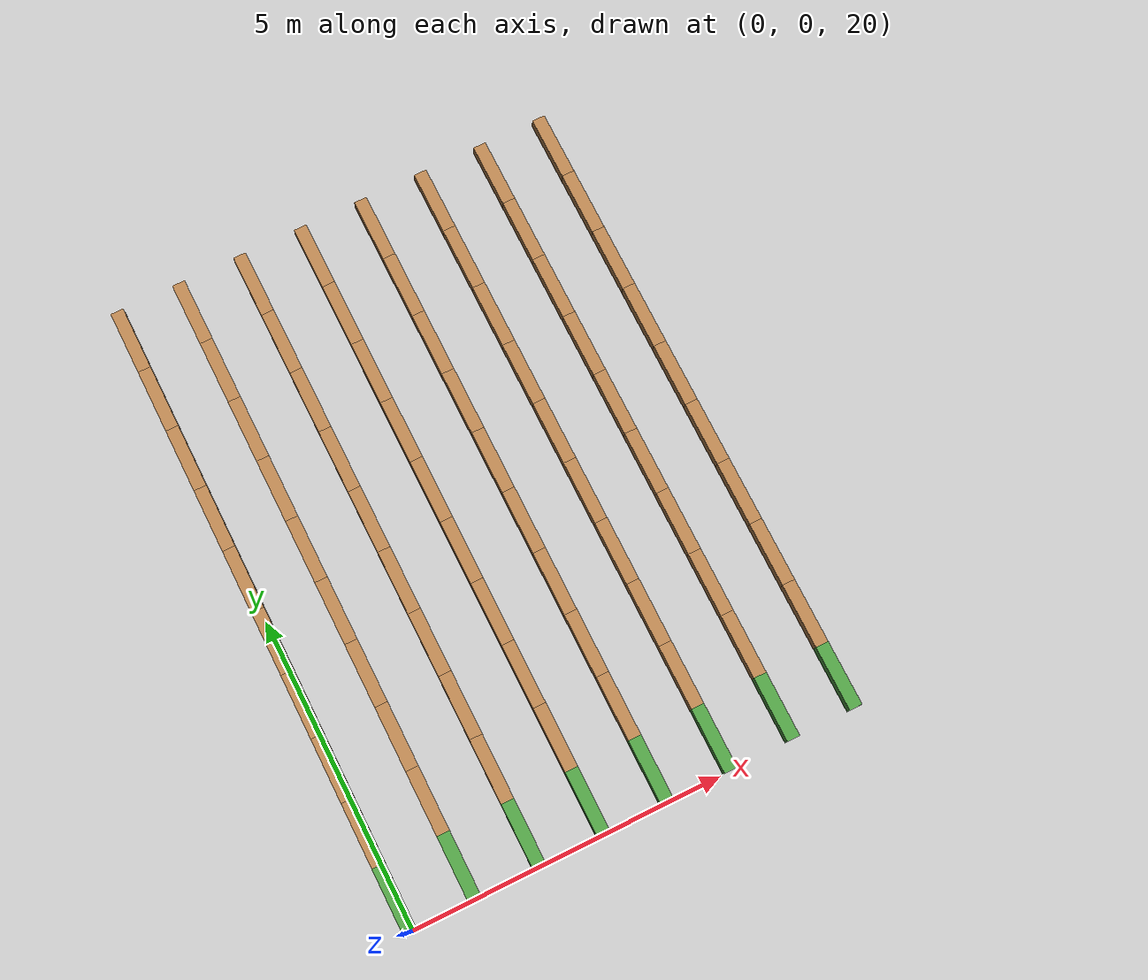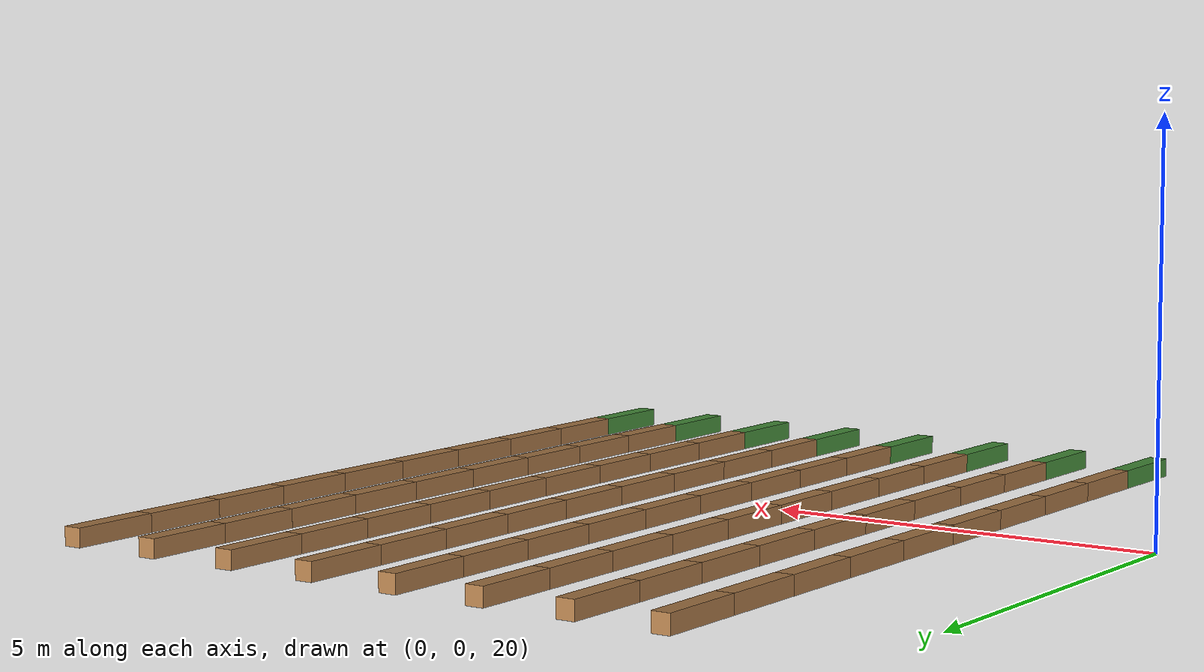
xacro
<?xml version="1.0"?>
<robot name="continuous_pendulum"
       xmlns:xi="http://www.w3.org/2001/XInclude"
       xmlns:gazebo="http://playerstage.sourceforge.net/gazebo/xmlschema/#gz"
       xmlns:model="http://playerstage.sourceforge.net/gazebo/xmlschema/#model"
       xmlns:sensor="http://playerstage.sourceforge.net/gazebo/xmlschema/#sensor"
       xmlns:body="http://playerstage.sourceforge.net/gazebo/xmlschema/#body"
       xmlns:geom="http://playerstage.sourceforge.net/gazebo/xmlschema/#geom"
       xmlns:joint="http://playerstage.sourceforge.net/gazebo/xmlschema/#joint"
       xmlns:interface="http://playerstage.sourceforge.net/gazebo/xmlschema/#interface"
       xmlns:rendering="http://playerstage.sourceforge.net/gazebo/xmlschema/#rendering"
       xmlns:renderable="http://playerstage.sourceforge.net/gazebo/xmlschema/#renderable"
       xmlns:controller="http://playerstage.sourceforge.net/gazebo/xmlschema/#controller"
       xmlns:xacro="http://ros.org/wiki/xacro"
       xmlns:physics="http://playerstage.sourceforge.net/gazebo/xmlschema/#physics">

  <!--
     A pendulum constructed from single continuous link and a mass with some moment of inertia
  -->
  <xacro:macro name="one_link" params="link_name parent *axis *origin material">
    <joint name="${link_name}_joint" type="continuous" >
      <insert_block name="origin"/>
      <insert_block name="axis"/>
      <parent link="${parent}" />
      <child link="${link_name}" />
      <dynamics damping="0.0" />
    </joint>
    <link name="${link_name}">
      <inertial >
        <mass value="1.0" />
        <origin xyz="0 1 0" />
        <inertia  ixx="0.0" ixy="0.0"  ixz="0.0"  iyy="0.0"  iyz="0.0"  izz="0.0" />
      </inertial>
      <visual >
        <origin xyz="0 0.5 0" rpy="0 0 0" />
        <geometry>
          <box size="0.2 1.0 0.2" />
        </geometry>
      </visual>
      <collision >
        <origin xyz="0 0.5 0" rpy="0 0 0" />
        <geometry>
          <box size="0.2 1.0 0.2" />
        </geometry>
      </collision>
    </link>
    <gazebo reference="${link_name}">
      <material>${material}</material>
      <turnGravityOff>false</turnGravityOff>
      <transmission type="SimpleTransmission" name="${link_name}_trans">
        <actuator name="${link_name}_motor" />
        <joint name="${link_name}_joint" />
        <mechanicalReduction>1</mechanicalReduction>
        <motorTorqueConstant>1</motorTorqueConstant>
      </transmission>
    </gazebo>
  </xacro:macro>

  <link name="world"/>
  <xacro:one_link link_name="link1_1" parent="world" material="Gazebo/GrassFloor">
    <origin xyz="0 0 21" rpy="0 0 0"/>
    <axis xyz="1 0 0" />
  </xacro:one_link>
  <xacro:one_link link_name="link2_1" parent="link1_1" material="Gazebo/LightWood">
    <origin xyz="0 1 0" rpy="0 0 0"/>
    <axis xyz="1 0 0" />
  </xacro:one_link>
  <xacro:one_link link_name="link3_1" parent="link2_1" material="Gazebo/LightWood">
    <origin xyz="0 1 0" rpy="0 0 0"/>
    <axis xyz="1 0 0" />
  </xacro:one_link>
  <xacro:one_link link_name="link4_1" parent="link3_1" material="Gazebo/LightWood">
    <origin xyz="0 1 0" rpy="0 0 0"/>
    <axis xyz="1 0 0" />
  </xacro:one_link>
  <xacro:one_link link_name="link5_1" parent="link4_1" material="Gazebo/LightWood">
    <origin xyz="0 1 0" rpy="0 0 0"/>
    <axis xyz="1 0 0" />
  </xacro:one_link>
  <xacro:one_link link_name="link6_1" parent="link5_1" material="Gazebo/LightWood">
    <origin xyz="0 1 0" rpy="0 0 0"/>
    <axis xyz="1 0 0" />
  </xacro:one_link>
  <xacro:one_link link_name="link7_1" parent="link6_1" material="Gazebo/LightWood">
    <origin xyz="0 1 0" rpy="0 0 0"/>
    <axis xyz="1 0 0" />
  </xacro:one_link>
  <xacro:one_link link_name="link8_1" parent="link7_1" material="Gazebo/LightWood">
    <origin xyz="0 1 0" rpy="0 0 0"/>
    <axis xyz="1 0 0" />
  </xacro:one_link>
  <xacro:one_link link_name="link9_1" parent="link8_1" material="Gazebo/LightWood">
    <origin xyz="0 1 0" rpy="0 0 0"/>
    <axis xyz="1 0 0" />
  </xacro:one_link>
  <xacro:one_link link_name="link10_1" parent="link9_1" material="Gazebo/LightWood">
    <origin xyz="0 1 0" rpy="0 0 0"/>
    <axis xyz="1 0 0" />
  </xacro:one_link>

  <xacro:one_link link_name="link1_2" parent="world" material="Gazebo/GrassFloor">
    <origin xyz="1 0 21" rpy="0 0 0"/>
    <axis xyz="1 0 0" />
  </xacro:one_link>
  <xacro:one_link link_name="link2_2" parent="link1_2" material="Gazebo/LightWood">
    <origin xyz="0 1 0" rpy="0 0 0"/>
    <axis xyz="1 0 0" />
  </xacro:one_link>
  <xacro:one_link link_name="link3_2" parent="link2_2" material="Gazebo/LightWood">
    <origin xyz="0 1 0" rpy="0 0 0"/>
    <axis xyz="1 0 0" />
  </xacro:one_link>
  <xacro:one_link link_name="link4_2" parent="link3_2" material="Gazebo/LightWood">
    <origin xyz="0 1 0" rpy="0 0 0"/>
    <axis xyz="1 0 0" />
  </xacro:one_link>
  <xacro:one_link link_name="link5_2" parent="link4_2" material="Gazebo/LightWood">
    <origin xyz="0 1 0" rpy="0 0 0"/>
    <axis xyz="1 0 0" />
  </xacro:one_link>
  <xacro:one_link link_name="link6_2" parent="link5_2" material="Gazebo/LightWood">
    <origin xyz="0 1 0" rpy="0 0 0"/>
    <axis xyz="1 0 0" />
  </xacro:one_link>
  <xacro:one_link link_name="link7_2" parent="link6_2" material="Gazebo/LightWood">
    <origin xyz="0 1 0" rpy="0 0 0"/>
    <axis xyz="1 0 0" />
  </xacro:one_link>
  <xacro:one_link link_name="link8_2" parent="link7_2" material="Gazebo/LightWood">
    <origin xyz="0 1 0" rpy="0 0 0"/>
    <axis xyz="1 0 0" />
  </xacro:one_link>
  <xacro:one_link link_name="link9_2" parent="link8_2" material="Gazebo/LightWood">
    <origin xyz="0 1 0" rpy="0 0 0"/>
    <axis xyz="1 0 0" />
  </xacro:one_link>
  <xacro:one_link link_name="link10_2" parent="link9_2" material="Gazebo/LightWood">
    <origin xyz="0 1 0" rpy="0 0 0"/>
    <axis xyz="1 0 0" />
  </xacro:one_link>

  <xacro:one_link link_name="link1_3" parent="world" material="Gazebo/GrassFloor">
    <origin xyz="2 0 21" rpy="0 0 0"/>
    <axis xyz="1 0 0" />
  </xacro:one_link>
  <xacro:one_link link_name="link2_3" parent="link1_3" material="Gazebo/LightWood">
    <origin xyz="0 1 0" rpy="0 0 0"/>
    <axis xyz="1 0 0" />
  </xacro:one_link>
  <xacro:one_link link_name="link3_3" parent="link2_3" material="Gazebo/LightWood">
    <origin xyz="0 1 0" rpy="0 0 0"/>
    <axis xyz="1 0 0" />
  </xacro:one_link>
  <xacro:one_link link_name="link4_3" parent="link3_3" material="Gazebo/LightWood">
    <origin xyz="0 1 0" rpy="0 0 0"/>
    <axis xyz="1 0 0" />
  </xacro:one_link>
  <xacro:one_link link_name="link5_3" parent="link4_3" material="Gazebo/LightWood">
    <origin xyz="0 1 0" rpy="0 0 0"/>
    <axis xyz="1 0 0" />
  </xacro:one_link>
  <xacro:one_link link_name="link6_3" parent="link5_3" material="Gazebo/LightWood">
    <origin xyz="0 1 0" rpy="0 0 0"/>
    <axis xyz="1 0 0" />
  </xacro:one_link>
  <xacro:one_link link_name="link7_3" parent="link6_3" material="Gazebo/LightWood">
    <origin xyz="0 1 0" rpy="0 0 0"/>
    <axis xyz="1 0 0" />
  </xacro:one_link>
  <xacro:one_link link_name="link8_3" parent="link7_3" material="Gazebo/LightWood">
    <origin xyz="0 1 0" rpy="0 0 0"/>
    <axis xyz="1 0 0" />
  </xacro:one_link>
  <xacro:one_link link_name="link9_3" parent="link8_3" material="Gazebo/LightWood">
    <origin xyz="0 1 0" rpy="0 0 0"/>
    <axis xyz="1 0 0" />
  </xacro:one_link>
  <xacro:one_link link_name="link10_3" parent="link9_3" material="Gazebo/LightWood">
    <origin xyz="0 1 0" rpy="0 0 0"/>
    <axis xyz="1 0 0" />
  </xacro:one_link>

  <xacro:one_link link_name="link1_4" parent="world" material="Gazebo/GrassFloor">
    <origin xyz="3 0 21" rpy="0 0 0"/>
    <axis xyz="1 0 0" />
  </xacro:one_link>
  <xacro:one_link link_name="link2_4" parent="link1_4" material="Gazebo/LightWood">
    <origin xyz="0 1 0" rpy="0 0 0"/>
    <axis xyz="1 0 0" />
  </xacro:one_link>
  <xacro:one_link link_name="link3_4" parent="link2_4" material="Gazebo/LightWood">
    <origin xyz="0 1 0" rpy="0 0 0"/>
    <axis xyz="1 0 0" />
  </xacro:one_link>
  <xacro:one_link link_name="link4_4" parent="link3_4" material="Gazebo/LightWood">
    <origin xyz="0 1 0" rpy="0 0 0"/>
    <axis xyz="1 0 0" />
  </xacro:one_link>
  <xacro:one_link link_name="link5_4" parent="link4_4" material="Gazebo/LightWood">
    <origin xyz="0 1 0" rpy="0 0 0"/>
    <axis xyz="1 0 0" />
  </xacro:one_link>
  <xacro:one_link link_name="link6_4" parent="link5_4" material="Gazebo/LightWood">
    <origin xyz="0 1 0" rpy="0 0 0"/>
    <axis xyz="1 0 0" />
  </xacro:one_link>
  <xacro:one_link link_name="link7_4" parent="link6_4" material="Gazebo/LightWood">
    <origin xyz="0 1 0" rpy="0 0 0"/>
    <axis xyz="1 0 0" />
  </xacro:one_link>
  <xacro:one_link link_name="link8_4" parent="link7_4" material="Gazebo/LightWood">
    <origin xyz="0 1 0" rpy="0 0 0"/>
    <axis xyz="1 0 0" />
  </xacro:one_link>
  <xacro:one_link link_name="link9_4" parent="link8_4" material="Gazebo/LightWood">
    <origin xyz="0 1 0" rpy="0 0 0"/>
    <axis xyz="1 0 0" />
  </xacro:one_link>
  <xacro:one_link link_name="link10_4" parent="link9_4" material="Gazebo/LightWood">
    <origin xyz="0 1 0" rpy="0 0 0"/>
    <axis xyz="1 0 0" />
  </xacro:one_link>

  <xacro:one_link link_name="link1_5" parent="world" material="Gazebo/GrassFloor">
    <origin xyz="4 0 21" rpy="0 0 0"/>
    <axis xyz="1 0 0" />
  </xacro:one_link>
  <xacro:one_link link_name="link2_5" parent="link1_5" material="Gazebo/LightWood">
    <origin xyz="0 1 0" rpy="0 0 0"/>
    <axis xyz="1 0 0" />
  </xacro:one_link>
  <xacro:one_link link_name="link3_5" parent="link2_5" material="Gazebo/LightWood">
    <origin xyz="0 1 0" rpy="0 0 0"/>
    <axis xyz="1 0 0" />
  </xacro:one_link>
  <xacro:one_link link_name="link4_5" parent="link3_5" material="Gazebo/LightWood">
    <origin xyz="0 1 0" rpy="0 0 0"/>
    <axis xyz="1 0 0" />
  </xacro:one_link>
  <xacro:one_link link_name="link5_5" parent="link4_5" material="Gazebo/LightWood">
    <origin xyz="0 1 0" rpy="0 0 0"/>
    <axis xyz="1 0 0" />
  </xacro:one_link>
  <xacro:one_link link_name="link6_5" parent="link5_5" material="Gazebo/LightWood">
    <origin xyz="0 1 0" rpy="0 0 0"/>
    <axis xyz="1 0 0" />
  </xacro:one_link>
  <xacro:one_link link_name="link7_5" parent="link6_5" material="Gazebo/LightWood">
    <origin xyz="0 1 0" rpy="0 0 0"/>
    <axis xyz="1 0 0" />
  </xacro:one_link>
  <xacro:one_link link_name="link8_5" parent="link7_5" material="Gazebo/LightWood">
    <origin xyz="0 1 0" rpy="0 0 0"/>
    <axis xyz="1 0 0" />
  </xacro:one_link>
  <xacro:one_link link_name="link9_5" parent="link8_5" material="Gazebo/LightWood">
    <origin xyz="0 1 0" rpy="0 0 0"/>
    <axis xyz="1 0 0" />
  </xacro:one_link>
  <xacro:one_link link_name="link10_5" parent="link9_5" material="Gazebo/LightWood">
    <origin xyz="0 1 0" rpy="0 0 0"/>
    <axis xyz="1 0 0" />
  </xacro:one_link>

  <xacro:one_link link_name="link1_6" parent="world" material="Gazebo/GrassFloor">
    <origin xyz="5 0 21" rpy="0 0 0"/>
    <axis xyz="1 0 0" />
  </xacro:one_link>
  <xacro:one_link link_name="link2_6" parent="link1_6" material="Gazebo/LightWood">
    <origin xyz="0 1 0" rpy="0 0 0"/>
    <axis xyz="1 0 0" />
  </xacro:one_link>
  <xacro:one_link link_name="link3_6" parent="link2_6" material="Gazebo/LightWood">
    <origin xyz="0 1 0" rpy="0 0 0"/>
    <axis xyz="1 0 0" />
  </xacro:one_link>
  <xacro:one_link link_name="link4_6" parent="link3_6" material="Gazebo/LightWood">
    <origin xyz="0 1 0" rpy="0 0 0"/>
    <axis xyz="1 0 0" />
  </xacro:one_link>
  <xacro:one_link link_name="link5_6" parent="link4_6" material="Gazebo/LightWood">
    <origin xyz="0 1 0" rpy="0 0 0"/>
    <axis xyz="1 0 0" />
  </xacro:one_link>
  <xacro:one_link link_name="link6_6" parent="link5_6" material="Gazebo/LightWood">
    <origin xyz="0 1 0" rpy="0 0 0"/>
    <axis xyz="1 0 0" />
  </xacro:one_link>
  <xacro:one_link link_name="link7_6" parent="link6_6" material="Gazebo/LightWood">
    <origin xyz="0 1 0" rpy="0 0 0"/>
    <axis xyz="1 0 0" />
  </xacro:one_link>
  <xacro:one_link link_name="link8_6" parent="link7_6" material="Gazebo/LightWood">
    <origin xyz="0 1 0" rpy="0 0 0"/>
    <axis xyz="1 0 0" />
  </xacro:one_link>
  <xacro:one_link link_name="link9_6" parent="link8_6" material="Gazebo/LightWood">
    <origin xyz="0 1 0" rpy="0 0 0"/>
    <axis xyz="1 0 0" />
  </xacro:one_link>
  <xacro:one_link link_name="link10_6" parent="link9_6" material="Gazebo/LightWood">
    <origin xyz="0 1 0" rpy="0 0 0"/>
    <axis xyz="1 0 0" />
  </xacro:one_link>

  <xacro:one_link link_name="link1_7" parent="world" material="Gazebo/GrassFloor">
    <origin xyz="6 0 21" rpy="0 0 0"/>
    <axis xyz="1 0 0" />
  </xacro:one_link>
  <xacro:one_link link_name="link2_7" parent="link1_7" material="Gazebo/LightWood">
    <origin xyz="0 1 0" rpy="0 0 0"/>
    <axis xyz="1 0 0" />
  </xacro:one_link>
  <xacro:one_link link_name="link3_7" parent="link2_7" material="Gazebo/LightWood">
    <origin xyz="0 1 0" rpy="0 0 0"/>
    <axis xyz="1 0 0" />
  </xacro:one_link>
  <xacro:one_link link_name="link4_7" parent="link3_7" material="Gazebo/LightWood">
    <origin xyz="0 1 0" rpy="0 0 0"/>
    <axis xyz="1 0 0" />
  </xacro:one_link>
  <xacro:one_link link_name="link5_7" parent="link4_7" material="Gazebo/LightWood">
    <origin xyz="0 1 0" rpy="0 0 0"/>
    <axis xyz="1 0 0" />
  </xacro:one_link>
  <xacro:one_link link_name="link6_7" parent="link5_7" material="Gazebo/LightWood">
    <origin xyz="0 1 0" rpy="0 0 0"/>
    <axis xyz="1 0 0" />
  </xacro:one_link>
  <xacro:one_link link_name="link7_7" parent="link6_7" material="Gazebo/LightWood">
    <origin xyz="0 1 0" rpy="0 0 0"/>
    <axis xyz="1 0 0" />
  </xacro:one_link>
  <xacro:one_link link_name="link8_7" parent="link7_7" material="Gazebo/LightWood">
    <origin xyz="0 1 0" rpy="0 0 0"/>
    <axis xyz="1 0 0" />
  </xacro:one_link>
  <xacro:one_link link_name="link9_7" parent="link8_7" material="Gazebo/LightWood">
    <origin xyz="0 1 0" rpy="0 0 0"/>
    <axis xyz="1 0 0" />
  </xacro:one_link>
  <xacro:one_link link_name="link10_7" parent="link9_7" material="Gazebo/LightWood">
    <origin xyz="0 1 0" rpy="0 0 0"/>
    <axis xyz="1 0 0" />
  </xacro:one_link>

  <xacro:one_link link_name="link1_8" parent="world" material="Gazebo/GrassFloor">
    <origin xyz="7 0 21" rpy="0 0 0"/>
    <axis xyz="1 0 0" />
  </xacro:one_link>
  <xacro:one_link link_name="link2_8" parent="link1_8" material="Gazebo/LightWood">
    <origin xyz="0 1 0" rpy="0 0 0"/>
    <axis xyz="1 0 0" />
  </xacro:one_link>
  <xacro:one_link link_name="link3_8" parent="link2_8" material="Gazebo/LightWood">
    <origin xyz="0 1 0" rpy="0 0 0"/>
    <axis xyz="1 0 0" />
  </xacro:one_link>
  <xacro:one_link link_name="link4_8" parent="link3_8" material="Gazebo/LightWood">
    <origin xyz="0 1 0" rpy="0 0 0"/>
    <axis xyz="1 0 0" />
  </xacro:one_link>
  <xacro:one_link link_name="link5_8" parent="link4_8" material="Gazebo/LightWood">
    <origin xyz="0 1 0" rpy="0 0 0"/>
    <axis xyz="1 0 0" />
  </xacro:one_link>
  <xacro:one_link link_name="link6_8" parent="link5_8" material="Gazebo/LightWood">
    <origin xyz="0 1 0" rpy="0 0 0"/>
    <axis xyz="1 0 0" />
  </xacro:one_link>
  <xacro:one_link link_name="link7_8" parent="link6_8" material="Gazebo/LightWood">
    <origin xyz="0 1 0" rpy="0 0 0"/>
    <axis xyz="1 0 0" />
  </xacro:one_link>
  <xacro:one_link link_name="link8_8" parent="link7_8" material="Gazebo/LightWood">
    <origin xyz="0 1 0" rpy="0 0 0"/>
    <axis xyz="1 0 0" />
  </xacro:one_link>
  <xacro:one_link link_name="link9_8" parent="link8_8" material="Gazebo/LightWood">
    <origin xyz="0 1 0" rpy="0 0 0"/>
    <axis xyz="1 0 0" />
  </xacro:one_link>
  <xacro:one_link link_name="link10_8" parent="link9_8" material="Gazebo/LightWood">
    <origin xyz="0 1 0" rpy="0 0 0"/>
    <axis xyz="1 0 0" />
  </xacro:one_link>

  <gazebo>
      <!-- PR2_ACTARRAY -->
      <controller:gazebo_ros_controller_manager name="gazebo_ros_controller_manager" plugin="libgazebo_ros_controller_manager.so">
        <alwaysOn>true</alwaysOn>
        <updateRate>1000.0</updateRate>
        <interface:audio name="gazebo_ros_controller_manager_dummy_iface" />
      </controller:gazebo_ros_controller_manager>
  </gazebo>

</robot>
